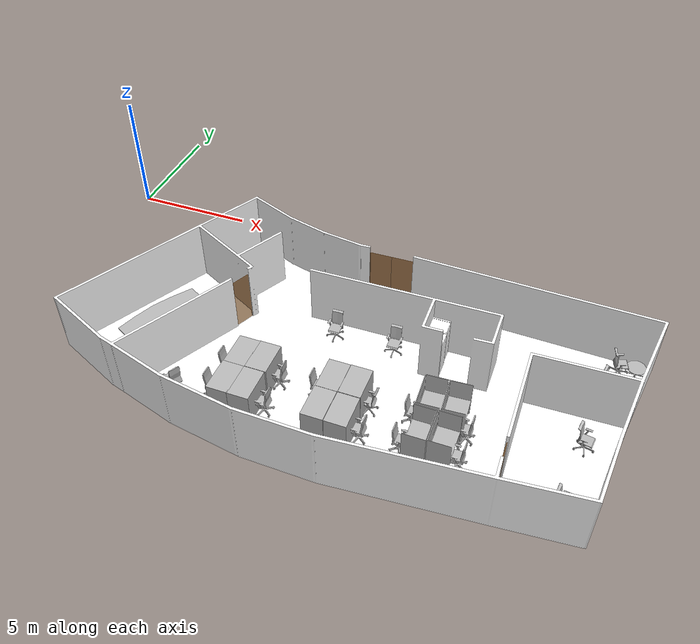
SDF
<sdf version="1.7">
 <world name="sim_world">
  <physics name="10ms" type="ode">
   <max_step_size>0.01</max_step_size>
   <real_time_factor>1.0</real_time_factor>
  </physics>
  <plugin filename="libgz-sim-physics-system.so" name="gz::sim::systems::Physics"/>
  <plugin filename="libgz-sim-user-commands-system.so" name="gz::sim::systems::UserCommands"/>
  <plugin filename="libgz-sim-scene-broadcaster-system.so" name="gz::sim::systems::SceneBroadcaster"/>
  <plugin filename="libdoor.so" name="door"/>
  <plugin filename="liblift.so" name="lift"/>
  <scene><ambient>1 1 1</ambient><background>0.8 0.8 0.8</background><grid>false</grid></scene>
  <light type="directional" name="sun">
   <pose>0 0 10 0 0 0</pose>
   <diffuse>1 1 1 1</diffuse>
   <specular>0.2 0.2 0.2 1</specular>
   <attenuation>
    <range>1000</range>
    <constant>0.09</constant>
    <linear>0.001</linear>
    <quadratic>0.001</quadratic>
   </attenuation>
   <direction>-0.5 0.1 -0.9</direction>
  </light>
  <include>
   <name>Fridge</name>
   <uri>model://Fridge</uri>
   <pose>15.905877648581944 -5.753531289452046 0.0 0 0 1.5708</pose>
   <static>True</static>
  </include>
  <include>
   <name>OfficeChairGrey</name>
   <uri>model://OfficeChairGrey</uri>
   <pose>14.25575798385424 -5.546939351620108 0.0 0 0 0.0166</pose>
   <static>True</static>
  </include>
  <include>
   <name>SmallCubicle</name>
   <uri>model://SmallCubicle</uri>
   <pose>10.225911509914997 -8.526615785243605 0.0 0 0 1.5708</pose>
   <static>True</static>
  </include>
  <include>
   <name>SmallCubicle_2</name>
   <uri>model://SmallCubicle</uri>
   <pose>10.183296208528093 -9.890381619078704 0.0 0 0 1.5708</pose>
   <static>True</static>
  </include>
  <include>
   <name>SmallCubicle_3</name>
   <uri>model://SmallCubicle</uri>
   <pose>13.810743847321321 -9.831106223705028 0.0 0 0 1.5708</pose>
   <static>True</static>
  </include>
  <include>
   <name>SmallCubicle_4</name>
   <uri>model://SmallCubicle</uri>
   <pose>9.391493072925952 -8.541963727519024 0.0 0 0 -1.5708</pose>
   <static>True</static>
  </include>
  <include>
   <name>SmallCubicle_5</name>
   <uri>model://SmallCubicle</uri>
   <pose>9.36992299189023 -9.890178447200816 0.0 0 0 4.7124</pose>
   <static>True</static>
  </include>
  <include>
   <name>SmallCubicle_6</name>
   <uri>model://SmallCubicle</uri>
   <pose>12.9440464782329 -9.827406802428492 0.0 0 0 4.7124</pose>
   <static>True</static>
  </include>
  <include>
   <name>SmallCubicle_7</name>
   <uri>model://SmallCubicle</uri>
   <pose>12.955153207557416 -8.471810171183453 0.0 0 0 -1.5708</pose>
   <static>True</static>
  </include>
  <include>
   <name>SmallCubicle_8</name>
   <uri>model://SmallCubicle</uri>
   <pose>13.810743847321321 -8.460694976364024 0.0 0 0 1.5708</pose>
   <static>True</static>
  </include>
  <include>
   <name>BigCubicle</name>
   <uri>model://BigCubicle</uri>
   <pose>17.404769712202054 -8.093766564899202 0.0 0 0 1.6279</pose>
   <static>True</static>
  </include>
  <include>
   <name>BigCubicle_2</name>
   <uri>model://BigCubicle</uri>
   <pose>17.37541984134222 -9.551473995772533 0.0 0 0 1.5708</pose>
   <static>True</static>
  </include>
  <include>
   <name>BigCubicle_3</name>
   <uri>model://BigCubicle</uri>
   <pose>16.495355455787788 -9.581348727316906 0.0 0 0 -1.5708</pose>
   <static>True</static>
  </include>
  <include>
   <name>BigCubicle_4</name>
   <uri>model://BigCubicle</uri>
   <pose>16.513429287424863 -8.135924729560857 0.0 0 0 1.6108</pose>
   <static>True</static>
  </include>
  <include>
   <name>OfficeChairGrey_2</name>
   <uri>model://OfficeChairGrey</uri>
   <pose>22.657389202217384 -3.444372845826767 0.0 0 0 1.8623</pose>
   <static>True</static>
  </include>
  <include>
   <name>OfficeChairGrey_3</name>
   <uri>model://OfficeChairGrey</uri>
   <pose>22.423335198890985 -4.614642862458759 0.0 0 0 1.4219</pose>
   <static>True</static>
  </include>
  <include>
   <name>OfficeChairGrey_4</name>
   <uri>model://OfficeChairGrey</uri>
   <pose>14.205616857490586 -8.518074100877419 0.0 0 0 -1.5708</pose>
   <static>True</static>
  </include>
  <include>
   <name>OfficeChairGrey_5</name>
   <uri>model://OfficeChairGrey</uri>
   <pose>21.993355781321743 -7.517359481837455 0.0 0 0 1.419</pose>
   <static>True</static>
  </include>
  <include>
   <name>OfficeChairGrey_6</name>
   <uri>model://OfficeChairGrey</uri>
   <pose>21.731416437755286 -10.29278045422472 0.0 0 0 1.4599</pose>
   <static>True</static>
  </include>
  <include>
   <name>OfficeChairBlue</name>
   <uri>model://OfficeChairBlue</uri>
   <pose>8.87747668736549 -8.63695504592634 0.0 0 0 1.5708</pose>
   <static>True</static>
  </include>
  <include>
   <name>OfficeChairBlue_2</name>
   <uri>model://OfficeChairBlue</uri>
   <pose>8.853637853693357 -9.784393622780726 0.0 0 0 1.5708</pose>
   <static>True</static>
  </include>
  <include>
   <name>OfficeChairBlue_3</name>
   <uri>model://OfficeChairBlue</uri>
   <pose>10.702933682710107 -8.503742017991438 0.0 0 0 4.7124</pose>
   <static>True</static>
  </include>
  <include>
   <name>OfficeChairBlue_4</name>
   <uri>model://OfficeChairBlue</uri>
   <pose>10.698159143579753 -9.870411516581347 0.0 0 0 4.7124</pose>
   <static>True</static>
  </include>
  <include>
   <name>OfficeChairBlue_5</name>
   <uri>model://OfficeChairBlue</uri>
   <pose>12.456662539665526 -8.470294847594209 0.0 0 0 1.5708</pose>
   <static>True</static>
  </include>
  <include>
   <name>OfficeChairBlue_6</name>
   <uri>model://OfficeChairBlue</uri>
   <pose>14.310741373307545 -9.832181341558849 0.0 0 0 -1.5708</pose>
   <static>True</static>
  </include>
  <include>
   <name>OfficeChairBlue_7</name>
   <uri>model://OfficeChairBlue</uri>
   <pose>16.02188879085571 -9.773041394103762 0.0 0 0 1.5708</pose>
   <static>True</static>
  </include>
  <include>
   <name>OfficeChairBlue_8</name>
   <uri>model://OfficeChairBlue</uri>
   <pose>16.041003878366954 -8.435044526780727 0.0 0 0 1.5708</pose>
   <static>True</static>
  </include>
  <include>
   <name>OfficeChairBlue_9</name>
   <uri>model://OfficeChairBlue</uri>
   <pose>17.804290279077996 -8.544952047222951 0.0 0 0 -1.5708</pose>
   <static>True</static>
  </include>
  <include>
   <name>OfficeChairBlue_10</name>
   <uri>model://OfficeChairBlue</uri>
   <pose>17.83296291034487 -9.72525367532564 0.0 0 0 -1.5708</pose>
   <static>True</static>
  </include>
  <include>
   <name>OfficeChairGrey_7</name>
   <uri>model://OfficeChairGrey</uri>
   <pose>11.842888762062305 -5.564640701481056 0.0 0 0 0.016</pose>
   <static>True</static>
  </include>
  <include>
   <name>ConfTable</name>
   <uri>model://ConfTable</uri>
   <pose>5.248606845427052 -7.381911563245789 0.0 0 0 1.1017</pose>
   <static>True</static>
  </include>
  <include>
   <name>coke_dispenser</name>
   <uri>model://TeleportDispenser</uri>
   <pose>17.75523273606308 -5.500954783258237 1.08 0 0 1.5708</pose>
   <static>True</static>
  </include>
  <include>
   <name>coke_dispenser_2</name>
   <uri>model://TeleportDispenser</uri>
   <pose>17.737472127737746 -5.839032788063036 0.63 0 0 1.5708</pose>
   <static>True</static>
  </include>
  <include>
   <name>Coke</name>
   <uri>model://Coke</uri>
   <pose>17.766119362519884 -5.5069991466253905 1.08 0 0 1.5708</pose>
   <static>False</static>
  </include>
  <include>
   <name>coke_ingestor</name>
   <uri>model://TeleportIngestor</uri>
   <pose>22.542656349675333 -7.610446063889577 0.805 0 0 1.5708</pose>
   <static>True</static>
  </include>
  <include>
   <name>coke_ingestor_2</name>
   <uri>model://TeleportIngestor</uri>
   <pose>5.661375911840242 -5.958557110725269 0.8 0 0 1.5708</pose>
   <static>True</static>
  </include>
  <include>
   <name>OpenRobotics/Fridge</name>
   <uri>model://Fridge</uri>
   <pose>15.881073748489847 -5.114826629333046 0.0 0 0 1.5708</pose>
   <static>True</static>
  </include>
  <include>
   <name>OpenRobotics/CoffeeTable</name>
   <uri>model://CoffeeTable</uri>
   <pose>23.134165875660052 -3.3360145109534343 0.0 0 0 1.5708</pose>
   <static>True</static>
  </include>
  <include>
   <name>OpenRobotics/TrashBin</name>
   <uri>model://TrashBin</uri>
   <pose>12.793360668799671 -7.634267966571886 0.0 0 0 1.5708</pose>
   <static>True</static>
  </include>
  <include>
   <name>OpenRobotics/TrashBin_2</name>
   <uri>model://TrashBin</uri>
   <pose>13.18875853965348 -7.634267966571886 0.0 0 0 1.5708</pose>
   <static>True</static>
  </include>
  <include>
   <name>OpenRobotics/TrashBin_3</name>
   <uri>model://TrashBin</uri>
   <pose>13.584147945012376 -7.63886473030909 0.0 0 0 1.5708</pose>
   <static>True</static>
  </include>
  <include>
   <name>OpenRobotics/OfficeChairBlue</name>
   <uri>model://OfficeChairBlue</uri>
   <pose>7.135413282398781 -9.977906370973656 0.0 0 0 -2.0863</pose>
   <static>True</static>
  </include>
  <model name="main_door">
   <pose>13.131950836046645 -2.579487092649509 0.0 0 0 -3.120269390429785</pose>
   <link name="right">
    <pose>0.473864332736097 0 1.11 0 0 0</pose>
    <visual name="right_visual">
     <geometry><box><size>0.937728665472194 0.03 2.2</size></box></geometry>
     <material>
      <ambient>0.5 0.25 0 0.6</ambient>
      <diffuse>0.5 0.25 0 0.6</diffuse>
      <pbr><metal><metalness>0.0</metalness></metal></pbr>
     </material>
    </visual>
    <collision name="right_collision">
     <geometry><box><size>0.937728665472194 0.03 2.2</size></box></geometry>
     <surface><contact><collide_bitmask>0x02</collide_bitmask></contact></surface>
    </collision>
    <inertial>
     <mass>50.0</mass>
     <inertia><ixx>20.17041666666667</ixx><iyy>23.83056270853443</iyy><izz>3.6676460418677586</izz></inertia>
    </inertial>
   </link>
   <joint name="right_joint" type="revolute">
    <parent>world</parent>
    <child>right</child>
    <axis><xyz>0 0 -1</xyz><limit><lower>0</lower><upper>1.57</upper></limit></axis>
    <pose>0.473864332736097 0 0 0 0 0</pose>
   </joint>
   <link name="left">
    <pose>-0.473864332736097 0 1.11 0 0 0</pose>
    <visual name="left_visual">
     <geometry><box><size>0.937728665472194 0.03 2.2</size></box></geometry>
     <material>
      <ambient>0.5 0.25 0 0.6</ambient>
      <diffuse>0.5 0.25 0 0.6</diffuse>
      <pbr><metal><metalness>0.0</metalness></metal></pbr>
     </material>
    </visual>
    <collision name="left_collision">
     <geometry><box><size>0.937728665472194 0.03 2.2</size></box></geometry>
     <surface><contact><collide_bitmask>0x02</collide_bitmask></contact></surface>
    </collision>
    <inertial>
     <mass>50.0</mass>
     <inertia><ixx>20.17041666666667</ixx><iyy>23.83056270853443</iyy><izz>3.6676460418677586</izz></inertia>
    </inertial>
   </link>
   <joint name="left_joint" type="revolute">
    <parent>world</parent>
    <child>left</child>
    <axis><xyz>0 0 -1</xyz><limit><lower>-1.57</lower><upper>0</upper></limit></axis>
    <pose>-0.473864332736097 0 0 0 0 0</pose>
   </joint>
   <plugin name="register_component" filename="libregister_component.so">
    <component name="Door">
     <v_max_door>0.5</v_max_door>
     <a_max_door>0.3</a_max_door>
     <a_nom_door>0.15</a_nom_door>
     <dx_min_door>0.01</dx_min_door>
     <f_max_door>500.0</f_max_door>
     <ros_interface>true</ros_interface>
     <door name="main_door" type="DoubleSwingDoor" left_joint_name="left_joint" right_joint_name="right_joint"/>
    </component>
   </plugin>
  </model>
  <model name="coe_door">
   <pose>8.077686357313898 -5.898342045416362 0.0 0 0 1.1560010438234292</pose>
   <link name="right">
    <pose>0 0 1.11 0 0 0</pose>
    <visual name="right_visual">
     <geometry><box><size>0.8766026166317483 0.03 2.2</size></box></geometry>
     <material>
      <ambient>0.5 0.25 0 0.6</ambient>
      <diffuse>0.5 0.25 0 0.6</diffuse>
      <pbr><metal><metalness>0.0</metalness></metal></pbr>
     </material>
    </visual>
    <collision name="right_collision">
     <geometry><box><size>0.8766026166317483 0.03 2.2</size></box></geometry>
     <surface><contact><collide_bitmask>0x02</collide_bitmask></contact></surface>
    </collision>
    <inertial>
     <mass>50.0</mass>
     <inertia><ixx>20.17041666666667</ixx><iyy>23.36846728119012</iyy><izz>3.20555061452345</izz></inertia>
    </inertial>
   </link>
   <joint name="right_joint" type="revolute">
    <parent>world</parent>
    <child>right</child>
    <axis><xyz>0 0 -1</xyz><limit><lower>0</lower><upper>1.57</upper></limit></axis>
    <pose>0.44330130831587417 0 0 0 0 0</pose>
   </joint>
   <plugin name="register_component" filename="libregister_component.so">
    <component name="Door">
     <v_max_door>0.5</v_max_door>
     <a_max_door>0.3</a_max_door>
     <a_nom_door>0.15</a_nom_door>
     <dx_min_door>0.01</dx_min_door>
     <f_max_door>500.0</f_max_door>
     <ros_interface>true</ros_interface>
     <door name="coe_door" type="SwingDoor" left_joint_name="empty_joint" right_joint_name="right_joint"/>
    </component>
   </plugin>
  </model>
  <model name="hardware_door">
   <pose>19.450062912168402 -10.319158936370446 0.0 0 0 -1.5760607387686447</pose>
   <link name="right">
    <pose>0 0 1.11 0 0 0</pose>
    <visual name="right_visual">
     <geometry><box><size>0.8792617700206885 0.03 2.2</size></box></geometry>
     <material>
      <ambient>0.5 0.25 0 0.6</ambient>
      <diffuse>0.5 0.25 0 0.6</diffuse>
      <pbr><metal><metalness>0.0</metalness></metal></pbr>
     </material>
    </visual>
    <collision name="right_collision">
     <geometry><box><size>0.8792617700206885 0.03 2.2</size></box></geometry>
     <surface><contact><collide_bitmask>0x02</collide_bitmask></contact></surface>
    </collision>
    <inertial>
     <mass>50.0</mass>
     <inertia><ixx>20.17041666666667</ixx><iyy>23.387921917582982</iyy><izz>3.225005250916309</izz></inertia>
    </inertial>
   </link>
   <joint name="right_joint" type="revolute">
    <parent>world</parent>
    <child>right</child>
    <axis><xyz>0 0 -1</xyz><limit><lower>0</lower><upper>1.57</upper></limit></axis>
    <pose>0.44463088501034426 0 0 0 0 0</pose>
   </joint>
   <plugin name="register_component" filename="libregister_component.so">
    <component name="Door">
     <v_max_door>0.5</v_max_door>
     <a_max_door>0.3</a_max_door>
     <a_nom_door>0.15</a_nom_door>
     <dx_min_door>0.01</dx_min_door>
     <f_max_door>500.0</f_max_door>
     <ros_interface>true</ros_interface>
     <door name="hardware_door" type="SwingDoor" left_joint_name="empty_joint" right_joint_name="right_joint"/>
    </component>
   </plugin>
  </model>
  <include><name>building_L1</name><uri>model://building_L1</uri></include>
  <rmf_charger_waypoints name="charger_waypoints">
   <rmf_vertex name="tinyRobot1_charger" x="10.433053704916215" y="-5.5750955876973505" level="L1"/>
   <rmf_vertex name="tinyRobot2_charger" x="20.423692180237488" y="-5.312098057266895" level="L1"/>
  </rmf_charger_waypoints>
 </world>
</sdf>

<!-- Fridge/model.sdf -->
<sdf version="1.6">
  <model name="Fridge">
    <static>true</static>
    <link name="base_link">
      <visual name="visual">
        <geometry>
          <mesh>
            <uri>meshes/fridge.dae</uri>
          </mesh>
        </geometry>
        <material>
          <diffuse>1.0 1.0 1.0</diffuse>
          <specular>1.0 1.0 1.0</specular>
          <pbr>
            <metal>
              <albedo_map>materials/textures/Fridge_Albedo.jpg</albedo_map>
              <normal_map>materials/textures/Fridge_Normal.png</normal_map>
              <roughness_map>materials/textures/Fridge_Roughness.jpg</roughness_map>
              <metalness_map>materials/textures/Fridge_Metalness.jpg</metalness_map>
            </metal>
          </pbr>
        </material>
      </visual>
      <collision name="Box001">
        <pose>0.0 0.0 0.867923 0.0 0.0 0.0</pose>
        <geometry>
          <box>
            <size>0.734673 0.7239 1.73585</size>
          </box>
        </geometry>
      </collision>
    </link>
  </model>
</sdf>

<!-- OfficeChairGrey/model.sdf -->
<sdf version="1.6">
  <model name="OfficeChairGrey">
   <static>true</static>
    <link name="body">
      <pose>0 0 0 0 0 0</pose>

      <visual name="visual">
        <geometry>
          <mesh>
            <uri>model://OfficeChairGrey/meshes/OfficeChairGrey.obj</uri>
          </mesh>
        </geometry>
      </visual>

      <collision name="collision">
        <geometry>
          <mesh>
            <uri>model://OfficeChairGrey/meshes/OfficeChairGrey_Col.obj</uri>
          </mesh>
        </geometry>
      </collision>

    </link>
  </model>
</sdf>

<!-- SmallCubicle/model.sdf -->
<sdf version="1.6">
  <model name="SmallCubicle">
   <static>true</static>
    <link name="body">
      <pose>0 0 0 0 0 0</pose>

      <visual name="visual">
        <geometry>
          <mesh>
            <uri>model://SmallCubicle/meshes/SmallCubicle.obj</uri>
          </mesh>
        </geometry>
      </visual>

      <collision name="collision">
        <geometry>
          <mesh>
            <uri>model://SmallCubicle/meshes/SmallCubicle_Col.obj</uri>
          </mesh>
        </geometry>
      </collision>

    </link>
  </model>
</sdf>

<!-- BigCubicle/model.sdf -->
<sdf version="1.6">
  <model name="BigCubicle">
   <static>true</static>
    <link name="body">
      <pose>0 0 0 0 0 0</pose>

      <visual name="visual">
        <geometry>
          <mesh>
            <uri>model://BigCubicle/meshes/BigCubicle.obj</uri>
          </mesh>
        </geometry>
      </visual>

      <collision name="collision">
        <geometry>
          <mesh>
            <uri>model://BigCubicle/meshes/BigCubicle_Col.obj</uri>
          </mesh>
        </geometry>
      </collision>

    </link>
  </model>
</sdf>

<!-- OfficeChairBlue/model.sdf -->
<sdf version="1.6">
  <model name="OfficeChairBlue">
   <static>true</static>
    <link name="body">
      <pose>0 0 0 0 0 0</pose>

      <visual name="visual">
        <geometry>
          <mesh>
            <uri>model://OfficeChairBlue/meshes/OfficeChairBlue.obj</uri>
          </mesh>
        </geometry>
      </visual>

      <collision name="collision">
        <geometry>
          <mesh>
            <uri>model://OfficeChairBlue/meshes/OfficeChairBlue_Col.obj</uri>
          </mesh>
        </geometry>
      </collision>

    </link>
  </model>
</sdf>

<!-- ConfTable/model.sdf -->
<sdf version="1.6">
  <model name="ConfTable">
   <static>true</static>
    <link name="body">
      <pose>0 0 0 0 0 0</pose>

      <visual name="visual">
        <geometry>
          <mesh>
            <uri>model://ConfTable/meshes/ConfTable.obj</uri>
          </mesh>
        </geometry>
      </visual>

      <collision name="collision">
        <geometry>
          <mesh>
            <uri>model://ConfTable/meshes/ConfTable_Col.obj</uri>
          </mesh>
        </geometry>
      </collision>

    </link>
  </model>
</sdf>

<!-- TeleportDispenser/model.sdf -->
<sdf version="1.6">
  <model name="TeleportDispenser">
    <pose>0.0 0.0 0.0 0.0 0.0 0.0</pose>
    <static>true</static>

    <link name="visual_link">
      <pose>0.0 0.0 0.05 0.0 0.0 0.0</pose>
      <visual name="visual">
        <geometry>
          <box>
            <size>0.1 0.1 0.1</size>
          </box>
        </geometry>
        <material>
          <ambient>128 192 210 0.1</ambient>
          <diffuse>128 192 210 0.1</diffuse>
        </material>
      </visual>
    </link>

    <plugin name="teleport_dispenser" filename="libteleport_dispenser.so">
    </plugin>

  </model>
</sdf>

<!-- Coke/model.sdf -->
<sdf version="1.6">
  <model name='Coke'>
    <static>true</static>
    <link name="body">
      <pose>0 0 0 0 0 0</pose>

        <visual name="visual">
          <geometry>
            <mesh><uri>model://Coke/meshes/coke.obj</uri></mesh>
          </geometry>
        </visual>

        <collision name="collision">
          <geometry>
            <mesh><uri>model://Coke/meshes/coke.obj</uri></mesh>
          </geometry>
        </collision>

        <!-- TODO: Replace with accurate values of mass and inertia -->
        <inertial>
          <mass>1.0</mass>
          <inertia>
            <ixx>0.003366666666666667</ixx>
            <iyy>0.0008666666666666667</iyy>
            <izz>0.0041666666666666675</izz>
          </inertia>
        </inertial>

    </link>

  </model>
</sdf>

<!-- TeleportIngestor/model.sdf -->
<sdf version="1.6">
  <model name="TeleportIngestor">
    <pose>0.0 0.0 0.0 0.0 0.0 0.0</pose>
    <static>true</static>

    <link name="visual_link">
      <pose>0.0 0.0 0.05 0.0 0.0 0.0</pose>
      <visual name="visual">
        <geometry>
          <box>
            <size>0.1 0.1 0.1</size>
          </box>
        </geometry>
        <material>
          <ambient>128 192 210 0.1</ambient>
          <diffuse>128 192 210 0.1</diffuse>
        </material>
      </visual>
    </link>

    <plugin name="teleport_ingestor" filename="libteleport_ingestor.so">
    </plugin>

  </model>
</sdf>

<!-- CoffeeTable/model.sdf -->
<sdf version="1.6">
  <model name='CoffeeTable'>
    <link name="body">
      <pose>0 0 0 0 0 0</pose>

      <visual name="visual">
        <geometry>
          <mesh>
            <uri>model://CoffeeTable/meshes/CoffeeTable.obj</uri>
            <scale>0.00817 0.00817 0.00817</scale>
          </mesh>
        </geometry>
      </visual>

      <collision name="collision">
        <geometry>
          <mesh>
            <uri>model://CoffeeTable/meshes/CoffeeTable.obj</uri>
            <scale>0.00817 0.00817 0.00817</scale>
          </mesh>
        </geometry>
      </collision>

    </link>
  </model>
</sdf>

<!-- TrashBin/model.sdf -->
<sdf version="1.6">
  <model name='TrashBin'>
    <static>true</static>
    <link name="body">
      <pose>0 0 0 0 0 0</pose>

        <visual name="visual">
          <geometry>
            <mesh><uri>model://TrashBin/meshes/TrashBin.obj</uri></mesh>
          </geometry>
        </visual>

        <collision name="collision">
          <geometry>
            <mesh><uri>model://TrashBin/meshes/TrashBin.obj</uri></mesh>
          </geometry>
        </collision>

    </link>
  </model>
</sdf>

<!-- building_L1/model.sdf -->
<sdf version="1.7">
  <model name="building_L1">
    <static>true</static>
    <link name="floor_1">
      <visual name="visual">
        <geometry>
          <mesh>
            <uri>model://building_L1/meshes/floor_1.obj</uri>
          </mesh>
        </geometry>
        <material>
          <diffuse>1.0 1.0 1.0 1.0</diffuse>
          <specular>0.1 0.1 0.1 1.0</specular>
          <pbr>
            <metal>
              <metalness>0.0</metalness>
              <albedo_map>model://building_L1/meshes/blue_linoleum.png</albedo_map>
            </metal>
          </pbr>
        </material>
      </visual>
      <collision name="collision">
        <geometry>
          <mesh>
            <uri>model://building_L1/meshes/floor_1.obj</uri>
          </mesh>
        </geometry>
        <surface>
          <contact>
            <collide_bitmask>0x01</collide_bitmask>
          </contact>
        </surface>
      </collision>
    </link>
    <link name="wall_1">
      <visual name="wall_1">
        <geometry>
          <mesh>
            <uri>model://building_L1/meshes/wall_1.obj</uri>
          </mesh>
        </geometry>
        <material>
          <diffuse>1.0 1.0 1.0 1.0</diffuse>
          <specular>0.1 0.1 0.1 1.0</specular>
          <pbr>
            <metal>
              <metalness>0.0</metalness>
              <albedo_map>model://building_L1/meshes/default.png</albedo_map>
            </metal>
          </pbr>
        </material>
      </visual>
      <collision name="collision">
        <geometry>
          <mesh>
            <uri>model://building_L1/meshes/wall_1.obj</uri>
          </mesh>
        </geometry>
        <surface>
          <contact>
            <collide_bitmask>0x01</collide_bitmask>
          </contact>
        </surface>
      </collision>
    </link>
  </model>
</sdf>
